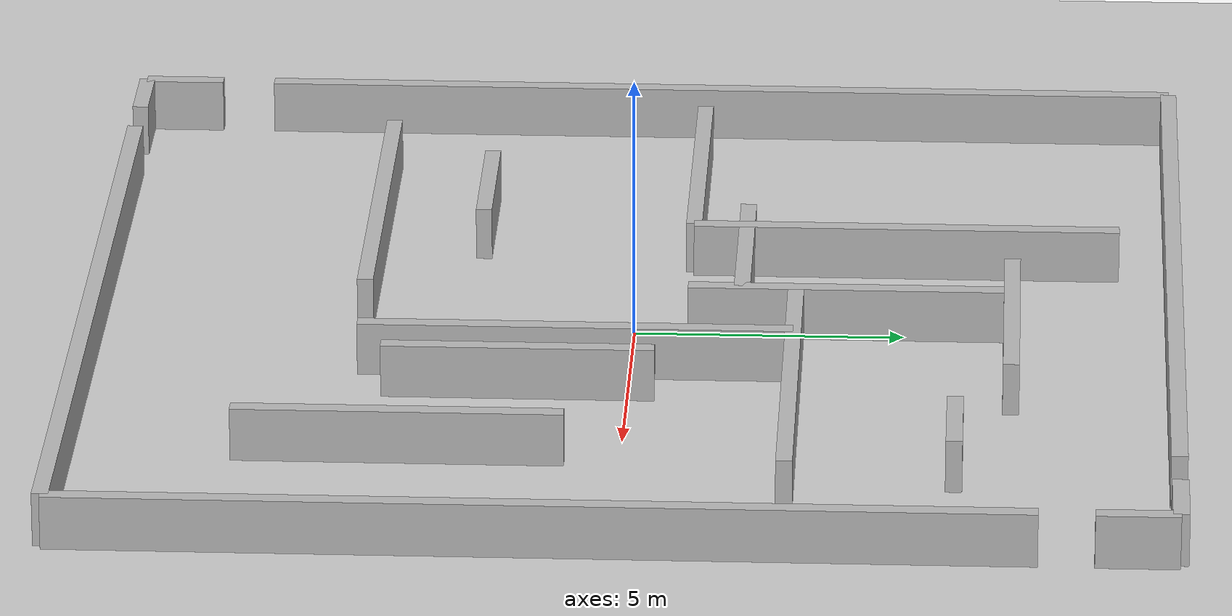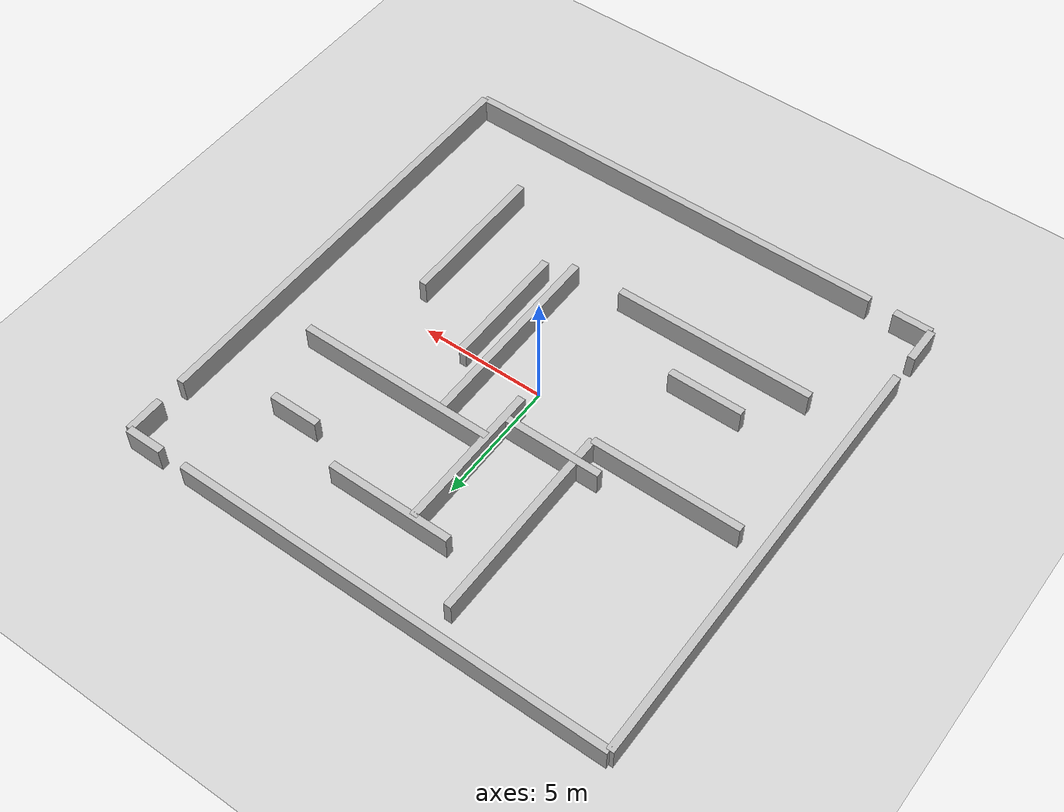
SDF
<?xml version="1.0" ?>
<sdf version="1.6">
<world name="maze_world">

  <include>
    <uri>model://sun</uri>
  </include>

  <include>
    <uri>model://ground_plane</uri>
  </include>

  <!-- 外围墙 -->

  <!-- 北墙分为两段，中心在 x=8 处留出小缺口（入口） -->
  <model name="wall_north_left">
    <static>true</static>
    <link name="link">
      <collision name="collision">
        <geometry><box><size>17.5 0.3 1</size></box></geometry>
      </collision>
      <visual name="visual">
        <geometry><box><size>17.5 0.3 1</size></box></geometry>
      </visual>
    </link>
    <pose>-1.25 10 0.5 0 0 0</pose>
  </model>

  <model name="wall_north_right">
    <static>true</static>
    <link name="link">
      <collision name="collision">
        <geometry><box><size>1.5 0.3 1</size></box></geometry>
      </collision>
      <visual name="visual">
        <geometry><box><size>1.5 0.3 1</size></box></geometry>
      </visual>
    </link>
    <pose>9.25 10 0.5 0 0 0</pose>
  </model>

  <!-- 南墙在 x=-8 处留出缺口（入口） -->
  <model name="wall_south_left">
    <static>true</static>
    <link name="link">
      <collision name="collision">
        <geometry><box><size>1.5 0.3 1</size></box></geometry>
      </collision>
      <visual name="visual">
        <geometry><box><size>1.5 0.3 1</size></box></geometry>
      </visual>
    </link>
    <pose>-9.25 -10 0.5 0 0 0</pose>
  </model>

  <model name="wall_south_right">
    <static>true</static>
    <link name="link">
      <collision name="collision">
        <geometry><box><size>17.5 0.3 1</size></box></geometry>
      </collision>
      <visual name="visual">
        <geometry><box><size>17.5 0.3 1</size></box></geometry>
      </visual>
    </link>
    <pose>1.25 -10 0.5 0 0 0</pose>
  </model>

  <!-- 东墙分段，y=8 处留缺口（与北墙的缺口在同一对角） -->
  <model name="wall_east_bottom">
    <static>true</static>
    <link name="link">
      <collision name="collision">
        <geometry><box><size>0.3 17.5 1</size></box></geometry>
      </collision>
      <visual name="visual">
        <geometry><box><size>0.3 17.5 1</size></box></geometry>
      </visual>
    </link>
    <pose>10 -1.25 0.5 0 0 0</pose>
  </model>

  <model name="wall_east_top">
    <static>true</static>
    <link name="link">
      <collision name="collision">
        <geometry><box><size>0.3 1.5 1</size></box></geometry>
      </collision>
      <visual name="visual">
        <geometry><box><size>0.3 1.5 1</size></box></geometry>
      </visual>
    </link>
    <pose>10 9.25 0.5 0 0 0</pose>
  </model>

  <!-- 西墙分段，y=-8 处留缺口（与南墙的缺口在同一对角） -->
  <model name="wall_west_bottom">
    <static>true</static>
    <link name="link">
      <collision name="collision">
        <geometry><box><size>0.3 1.5 1</size></box></geometry>
      </collision>
      <visual name="visual">
        <geometry><box><size>0.3 1.5 1</size></box></geometry>
      </visual>
    </link>
    <pose>-10 -9.25 0.5 0 0 0</pose>
  </model>

  <model name="wall_west_top">
    <static>true</static>
    <link name="link">
      <collision name="collision">
        <geometry><box><size>0.3 17.5 1</size></box></geometry>
      </collision>
      <visual name="visual">
        <geometry><box><size>0.3 17.5 1</size></box></geometry>
      </visual>
    </link>
    <pose>-10 1.25 0.5 0 0 0</pose>
  </model>

  <!-- 内部迷宫墙 -->

  <model name="maze_wall1">
    <static>true</static>
    <link name="link">
      <collision name="collision">
        <geometry><box><size>8 0.3 1</size></box></geometry>
      </collision>
      <visual name="visual">
        <geometry><box><size>8 0.3 1</size></box></geometry>
      </visual>
    </link>
    <pose>-4 -5 0.5 0 0 0</pose>
  </model>

  <model name="maze_wall2">
    <static>true</static>
    <link name="link">
      <collision name="collision">
        <geometry><box><size>0.3 8 1</size></box></geometry>
      </collision>
      <visual name="visual">
        <geometry><box><size>0.3 8 1</size></box></geometry>
      </visual>
    </link>
    <pose>2 -1 0.5 0 0 0</pose>
  </model>

  <model name="maze_wall3">
    <static>true</static>
    <link name="link">
      <collision name="collision">
        <geometry><box><size>8 0.3 1</size></box></geometry>
      </collision>
      <visual name="visual">
        <geometry><box><size>8 0.3 1</size></box></geometry>
      </visual>
    </link>
    <pose>4 3 0.5 0 0 0</pose>
  </model>

  <model name="maze_wall4">
    <static>true</static>
    <link name="link">
      <collision name="collision">
        <geometry><box><size>0.3 8 1</size></box></geometry>
      </collision>
      <visual name="visual">
        <geometry><box><size>0.3 8 1</size></box></geometry>
      </visual>
    </link>
    <pose>-3 5 0.5 0 0 0</pose>
  </model>

  <model name="maze_wall5">
    <static>true</static>
    <link name="link">
      <collision name="collision">
        <geometry><box><size>6 0.3 1</size></box></geometry>
      </collision>
      <visual name="visual">
        <geometry><box><size>6 0.3 1</size></box></geometry>
      </visual>
    </link>
    <pose>-6 1 0.5 0 0 0</pose>
  </model>

  <model name="maze_wall6">
    <static>true</static>
    <link name="link">
      <collision name="collision">
        <geometry><box><size>0.3 6 1</size></box></geometry>
      </collision>
      <visual name="visual">
        <geometry><box><size>0.3 6 1</size></box></geometry>
      </visual>
    </link>
    <pose>6 -4 0.5 0 0 0</pose>
  </model>

  <model name="maze_wall7">
    <static>true</static>
    <link name="link">
      <collision name="collision">
        <geometry><box><size>5 0.3 1</size></box></geometry>
      </collision>
      <visual name="visual">
        <geometry><box><size>5 0.3 1</size></box></geometry>
      </visual>
    </link>
    <pose>1 7 0.5 0 0 0</pose>
  </model>

  <!-- 新增内部墙以增加复杂度 -->
  <model name="maze_wall8">
    <static>true</static>
    <link name="link">
      <collision name="collision">
        <geometry><box><size>0.3 6 1</size></box></geometry>
      </collision>
      <visual name="visual">
        <geometry><box><size>0.3 6 1</size></box></geometry>
      </visual>
    </link>
    <pose>0 4 0.5 0 0 0</pose>
  </model>

  <model name="maze_wall9">
    <static>true</static>
    <link name="link">
      <collision name="collision">
        <geometry><box><size>4 0.3 1</size></box></geometry>
      </collision>
      <visual name="visual">
        <geometry><box><size>4 0.3 1</size></box></geometry>
      </visual>
    </link>
    <pose>-2 2 0.5 0 0 0</pose>
  </model>

  <model name="maze_wall10">
    <static>true</static>
    <link name="link">
      <collision name="collision">
        <geometry><box><size>0.3 5 1</size></box></geometry>
      </collision>
      <visual name="visual">
        <geometry><box><size>0.3 5 1</size></box></geometry>
      </visual>
    </link>
    <pose>3 -2 0.5 0 0 0</pose>
  </model>

  <model name="maze_wall11">
    <static>true</static>
    <link name="link">
      <collision name="collision">
        <geometry><box><size>3 0.3 1</size></box></geometry>
      </collision>
      <visual name="visual">
        <geometry><box><size>3 0.3 1</size></box></geometry>
      </visual>
    </link>
    <pose>-5 -3 0.5 0 0 0</pose>
  </model>

  <model name="maze_wall12">
    <static>true</static>
    <link name="link">
      <collision name="collision">
        <geometry><box><size>2 0.3 1</size></box></geometry>
      </collision>
      <visual name="visual">
        <geometry><box><size>2 0.3 1</size></box></geometry>
      </visual>
    </link>
    <pose>6 6 0.5 0 0 0</pose>
  </model>

</world>
</sdf>
